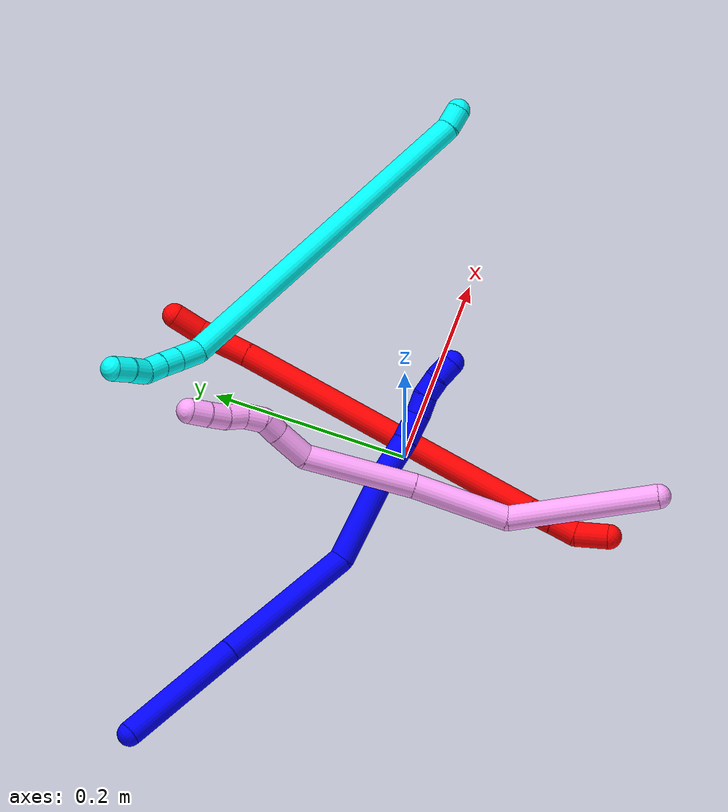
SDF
<sdf version="1.7">
 <world name="default">
  <plugin name="TubeGeneratorPlugin" filename="libtube_generator_plugin.so"/>
  <model name="photoneo_s_sensor">
   <static>1</static>
   <pose>0 0 2 1.57079 1.57079 3.14159</pose>
   <link name="link">
    <inertial><mass>0.1</mass></inertial>
    <sensor name="sensor" type="depth">
     <update_rate>30</update_rate>
     <camera>
      <horizontal_fov>1.22</horizontal_fov>
      <image><width>1920</width><height>1200</height><format>B8G8R8</format></image>
      <clip><near>0.1</near><far>4</far></clip>
      <depth_camera><output>points</output></depth_camera>
     </camera>
     <plugin name="camera_plugin" filename="libgazebo_ros_depth_camera.so">
      <baseline>0.2</baseline>
      <alwaysOn>1</alwaysOn>
      <updateRate>0.0</updateRate>
      <cameraName>camera_ir</cameraName>
      <imageTopicName>/camera/color/image_raw</imageTopicName>
      <cameraInfoTopicName>/camera/color/camera_info</cameraInfoTopicName>
      <depthImageTopicName>/camera/depth/image_raw</depthImageTopicName>
      <depthImageCameraInfoTopicName>/camera/depth/camera_info</depthImageCameraInfoTopicName>
      <pointCloudTopicName>/camera/depth/points</pointCloudTopicName>
      <frameName>fr_optical</frameName>
      <pointCloudCutoff>0.1</pointCloudCutoff>
      <pointCloudCutoffMax>2.0</pointCloudCutoffMax>
      <distortionK1>0</distortionK1>
      <distortionK2>0</distortionK2>
      <distortionK3>0</distortionK3>
      <distortionT1>0</distortionT1>
      <distortionT2>0</distortionT2>
      <CxPrime>0</CxPrime>
      <Cx>0</Cx>
      <Cy>0</Cy>
      <focalLength>0</focalLength>
      <hackBaseline>0</hackBaseline>
     </plugin>
    </sensor>
   </link>
  </model>
  <gravity>0 0 -9.8</gravity>
  <magnetic_field>6e-06 2.3e-05 -4.2e-05</magnetic_field>
  <atmosphere type="adiabatic"/>
  <physics name="default_physics" default="0" type="ode">
   <max_step_size>0.003</max_step_size>
   <real_time_factor>1</real_time_factor>
   <real_time_update_rate>1000</real_time_update_rate>
   <max_contacts>10000</max_contacts>
   <ode>
    <solver>
     <type>quick</type>
     <iters>100</iters>
     <sor>1.3</sor>
     <use_dynamic_moi_rescaling>0</use_dynamic_moi_rescaling>
    </solver>
    <constraints>
     <contact_max_correcting_vel>0</contact_max_correcting_vel>
     <contact_surface_layer>0.001</contact_surface_layer>
     <cfm>0</cfm>
     <erp>0.2</erp>
    </constraints>
   </ode>
  </physics>
  <scene><ambient>0.4 0.4 0.4 1</ambient><background>0.7 0.7 0.7 1</background><shadows>0</shadows></scene>
  <audio><device>default</device></audio>
  <spherical_coordinates>
   <surface_model>EARTH_WGS84</surface_model>
   <latitude_deg>0</latitude_deg>
   <longitude_deg>0</longitude_deg>
   <elevation>0</elevation>
   <heading_deg>0</heading_deg>
  </spherical_coordinates>
  <model name="bin">
   <static>1</static>
   <link name="bottom">
    <collision name="collision-bottom">
     <pose>0 0 -0.01 0 -0 0</pose>
     <geometry><box><size>0.8 0.6 0.02</size></box></geometry>
     <surface>
      <friction><ode><mu>100</mu><mu2>100</mu2></ode></friction>
      <contact><collide_bitmask>65535</collide_bitmask></contact>
     </surface>
    </collision>
   </link>
   <link name="west_wall">
    <collision name="collision-west_wall">
     <pose>-0.41 0 0.1 0 -0 0</pose>
     <geometry><box><size>0.02 0.6 0.2</size></box></geometry>
     <surface>
      <friction><ode><mu>100</mu><mu2>100</mu2></ode></friction>
      <contact><collide_bitmask>65535</collide_bitmask></contact>
     </surface>
    </collision>
   </link>
   <link name="east_wall">
    <collision name="collision-east_wall">
     <pose>0.41 0 0.1 0 -0 0</pose>
     <geometry><box><size>0.02 0.6 0.2</size></box></geometry>
     <surface>
      <friction><ode><mu>100</mu><mu2>100</mu2></ode></friction>
      <contact><collide_bitmask>65535</collide_bitmask></contact>
     </surface>
    </collision>
   </link>
   <link name="south_wall">
    <collision name="collision-south_wall">
     <pose>0 -0.31 0.1 0 -0 0</pose>
     <geometry><box><size>0.8 0.02 0.2</size></box></geometry>
     <surface>
      <friction><ode><mu>100</mu><mu2>100</mu2></ode></friction>
      <contact><collide_bitmask>65535</collide_bitmask></contact>
     </surface>
    </collision>
   </link>
   <link name="north_wall">
    <collision name="collision-north_wall">
     <pose>0 0.31 0.1 0 -0 0</pose>
     <geometry><box><size>0.8 0.02 0.2</size></box></geometry>
     <surface>
      <friction><ode><mu>100</mu><mu2>100</mu2></ode></friction>
      <contact><collide_bitmask>65535</collide_bitmask></contact>
     </surface>
    </collision>
   </link>
  </model>
  <model name="1">
   <static>0</static>
   <link name="1">
    <collision name="collision-cylinder-e_1_1_4">
     <pose>-0.001299 0.019034 -0.061353 -2.84076 -0.02022 0.133222</pose>
     <geometry><cylinder><radius>0.0125</radius><length>0.128501</length></cylinder></geometry>
     <surface>
      <friction><ode><mu>1.16</mu><mu2>1.16</mu2><slip1>0</slip1><slip2>0</slip2></ode></friction>
      <contact><ode><kp>1e+06</kp><kd>1</kd><max_vel>0</max_vel><min_depth>0.001</min_depth></ode></contact>
     </surface>
    </collision>
    <visual name="visual-cylinder-e_1_1_4">
     <pose>-0.001299 0.019034 -0.061353 -2.84076 -0.02022 0.133222</pose>
     <geometry><cylinder><radius>0.0125</radius><length>0.128501</length></cylinder></geometry>
     <material><ambient>0 0 1 1</ambient></material>
    </visual>
    <collision name="collision-cylinder-e_2_4_5">
     <pose>-0.004372 0.061377 -0.19203 -2.81725 -0.024243 0.147916</pose>
     <geometry><cylinder><radius>0.0125</radius><length>0.146319</length></cylinder></geometry>
     <surface>
      <friction><ode><mu>1.16</mu><mu2>1.16</mu2><slip1>0</slip1><slip2>0</slip2></ode></friction>
      <contact><ode><kp>1e+06</kp><kd>1</kd><max_vel>0</max_vel><min_depth>0.001</min_depth></ode></contact>
     </surface>
    </collision>
    <visual name="visual-cylinder-e_2_4_5">
     <pose>-0.004372 0.061377 -0.19203 -2.81725 -0.024243 0.147916</pose>
     <geometry><cylinder><radius>0.0125</radius><length>0.146319</length></cylinder></geometry>
     <material><ambient>0 0 1 1</ambient></material>
    </visual>
    <collision name="collision-cylinder-e_3_5_6">
     <pose>0.010668 0.086258 -0.305465 -3.10593 0.363956 -2.94836</pose>
     <geometry><cylinder><radius>0.0125</radius><length>0.094464</length></cylinder></geometry>
     <surface>
      <friction><ode><mu>1.16</mu><mu2>1.16</mu2><slip1>0</slip1><slip2>0</slip2></ode></friction>
      <contact><ode><kp>1e+06</kp><kd>1</kd><max_vel>0</max_vel><min_depth>0.001</min_depth></ode></contact>
     </surface>
    </collision>
    <visual name="visual-cylinder-e_3_5_6">
     <pose>0.010668 0.086258 -0.305465 -3.10593 0.363956 -2.94836</pose>
     <geometry><cylinder><radius>0.0125</radius><length>0.094464</length></cylinder></geometry>
     <material><ambient>0 0 1 1</ambient></material>
    </visual>
    <collision name="collision-cylinder-e_4_6_7">
     <pose>0.032825 0.090761 -0.368162 -2.98529 0.2767 -2.11694</pose>
     <geometry><cylinder><radius>0.0125</radius><length>0.039122</length></cylinder></geometry>
     <surface>
      <friction><ode><mu>1.16</mu><mu2>1.16</mu2><slip1>0</slip1><slip2>0</slip2></ode></friction>
      <contact><ode><kp>1e+06</kp><kd>1</kd><max_vel>0</max_vel><min_depth>0.001</min_depth></ode></contact>
     </surface>
    </collision>
    <visual name="visual-cylinder-e_4_6_7">
     <pose>0.032825 0.090761 -0.368162 -2.98529 0.2767 -2.11694</pose>
     <geometry><cylinder><radius>0.0125</radius><length>0.039122</length></cylinder></geometry>
     <material><ambient>0 0 1 1</ambient></material>
    </visual>
    <collision name="collision-cylinder-e_5_7_8">
     <pose>0.043334 0.095216 -0.400182 -3.02848 0.36494 -2.5462</pose>
     <geometry><cylinder><radius>0.0125</radius><length>0.028943</length></cylinder></geometry>
     <surface>
      <friction><ode><mu>1.16</mu><mu2>1.16</mu2><slip1>0</slip1><slip2>0</slip2></ode></friction>
      <contact><ode><kp>1e+06</kp><kd>1</kd><max_vel>0</max_vel><min_depth>0.001</min_depth></ode></contact>
     </surface>
    </collision>
    <visual name="visual-cylinder-e_5_7_8">
     <pose>0.043334 0.095216 -0.400182 -3.02848 0.36494 -2.5462</pose>
     <geometry><cylinder><radius>0.0125</radius><length>0.028943</length></cylinder></geometry>
     <material><ambient>0 0 1 1</ambient></material>
    </visual>
    <collision name="collision-cylinder-e_6_8_9">
     <pose>0.05319 0.095937 -0.422983 3.05586 0.462793 2.78147</pose>
     <geometry><cylinder><radius>0.0125</radius><length>0.021017</length></cylinder></geometry>
     <surface>
      <friction><ode><mu>1.16</mu><mu2>1.16</mu2><slip1>0</slip1><slip2>0</slip2></ode></friction>
      <contact><ode><kp>1e+06</kp><kd>1</kd><max_vel>0</max_vel><min_depth>0.001</min_depth></ode></contact>
     </surface>
    </collision>
    <visual name="visual-cylinder-e_6_8_9">
     <pose>0.05319 0.095937 -0.422983 3.05586 0.462793 2.78147</pose>
     <geometry><cylinder><radius>0.0125</radius><length>0.021017</length></cylinder></geometry>
     <material><ambient>0 0 1 1</ambient></material>
    </visual>
    <collision name="collision-cylinder-e_7_9_10">
     <pose>0.059889 0.093942 -0.442354 3.02322 0.196663 2.05974</pose>
     <geometry><cylinder><radius>0.0125</radius><length>0.020542</length></cylinder></geometry>
     <surface>
      <friction><ode><mu>1.16</mu><mu2>1.16</mu2><slip1>0</slip1><slip2>0</slip2></ode></friction>
      <contact><ode><kp>1e+06</kp><kd>1</kd><max_vel>0</max_vel><min_depth>0.001</min_depth></ode></contact>
     </surface>
    </collision>
    <visual name="visual-cylinder-e_7_9_10">
     <pose>0.059889 0.093942 -0.442354 3.02322 0.196663 2.05974</pose>
     <geometry><cylinder><radius>0.0125</radius><length>0.020542</length></cylinder></geometry>
     <material><ambient>0 0 1 1</ambient></material>
    </visual>
    <collision name="collision-cylinder-e_8_10_2">
     <pose>0.062753 0.093745 -0.462821 -3.04699 0.081335 -1.42011</pose>
     <geometry><cylinder><radius>0.0125</radius><length>0.021091</length></cylinder></geometry>
     <surface>
      <friction><ode><mu>1.16</mu><mu2>1.16</mu2><slip1>0</slip1><slip2>0</slip2></ode></friction>
      <contact><ode><kp>1e+06</kp><kd>1</kd><max_vel>0</max_vel><min_depth>0.001</min_depth></ode></contact>
     </surface>
    </collision>
    <visual name="visual-cylinder-e_8_10_2">
     <pose>0.062753 0.093745 -0.462821 -3.04699 0.081335 -1.42011</pose>
     <geometry><cylinder><radius>0.0125</radius><length>0.021091</length></cylinder></geometry>
     <material><ambient>0 0 1 1</ambient></material>
    </visual>
    <collision name="collision-sphere-2">
     <pose>0.063609 0.094738 -0.473284 0 -0 0</pose>
     <geometry><sphere><radius>0.0125</radius></sphere></geometry>
     <surface>
      <friction><ode><mu>1.16</mu><mu2>1.16</mu2><slip1>0</slip1><slip2>0</slip2></ode></friction>
      <contact><ode><kp>1e+06</kp><kd>1</kd><max_vel>0</max_vel><min_depth>0.001</min_depth></ode></contact>
     </surface>
    </collision>
    <visual name="visual-sphere-2">
     <pose>0.063609 0.094738 -0.473284 0 -0 0</pose>
     <geometry><sphere><radius>0.0125</radius></sphere></geometry>
     <material><ambient>0 0 1 1</ambient></material>
    </visual>
    <collision name="collision-sphere-10">
     <pose>0.061896 0.092753 -0.452357 0 -0 0</pose>
     <geometry><sphere><radius>0.0125</radius></sphere></geometry>
     <surface>
      <friction><ode><mu>1.16</mu><mu2>1.16</mu2><slip1>0</slip1><slip2>0</slip2></ode></friction>
      <contact><ode><kp>1e+06</kp><kd>1</kd><max_vel>0</max_vel><min_depth>0.001</min_depth></ode></contact>
     </surface>
    </collision>
    <visual name="visual-sphere-10">
     <pose>0.061896 0.092753 -0.452357 0 -0 0</pose>
     <geometry><sphere><radius>0.0125</radius></sphere></geometry>
     <material><ambient>0 0 1 1</ambient></material>
    </visual>
    <collision name="collision-sphere-9">
     <pose>0.057882 0.095132 -0.432352 0 -0 0</pose>
     <geometry><sphere><radius>0.0125</radius></sphere></geometry>
     <surface>
      <friction><ode><mu>1.16</mu><mu2>1.16</mu2><slip1>0</slip1><slip2>0</slip2></ode></friction>
      <contact><ode><kp>1e+06</kp><kd>1</kd><max_vel>0</max_vel><min_depth>0.001</min_depth></ode></contact>
     </surface>
    </collision>
    <visual name="visual-sphere-9">
     <pose>0.057882 0.095132 -0.432352 0 -0 0</pose>
     <geometry><sphere><radius>0.0125</radius></sphere></geometry>
     <material><ambient>0 0 1 1</ambient></material>
    </visual>
    <collision name="collision-sphere-4">
     <pose>-0.002598 0.038069 -0.122705 0 -0 0</pose>
     <geometry><sphere><radius>0.0125</radius></sphere></geometry>
     <surface>
      <friction><ode><mu>1.16</mu><mu2>1.16</mu2><slip1>0</slip1><slip2>0</slip2></ode></friction>
      <contact><ode><kp>1e+06</kp><kd>1</kd><max_vel>0</max_vel><min_depth>0.001</min_depth></ode></contact>
     </surface>
    </collision>
    <visual name="visual-sphere-4">
     <pose>-0.002598 0.038069 -0.122705 0 -0 0</pose>
     <geometry><sphere><radius>0.0125</radius></sphere></geometry>
     <material><ambient>0 0 1 1</ambient></material>
    </visual>
    <collision name="collision-sphere-1">
     <geometry><sphere><radius>0.0125</radius></sphere></geometry>
     <surface>
      <friction><ode><mu>1.16</mu><mu2>1.16</mu2><slip1>0</slip1><slip2>0</slip2></ode></friction>
      <contact><ode><kp>1e+06</kp><kd>1</kd><max_vel>0</max_vel><min_depth>0.001</min_depth></ode></contact>
     </surface>
    </collision>
    <visual name="visual-sphere-1">
     <geometry><sphere><radius>0.0125</radius></sphere></geometry>
     <material><ambient>0 0 1 1</ambient></material>
    </visual>
    <collision name="collision-sphere-8">
     <pose>0.048499 0.096742 -0.413614 0 -0 0</pose>
     <geometry><sphere><radius>0.0125</radius></sphere></geometry>
     <surface>
      <friction><ode><mu>1.16</mu><mu2>1.16</mu2><slip1>0</slip1><slip2>0</slip2></ode></friction>
      <contact><ode><kp>1e+06</kp><kd>1</kd><max_vel>0</max_vel><min_depth>0.001</min_depth></ode></contact>
     </surface>
    </collision>
    <visual name="visual-sphere-8">
     <pose>0.048499 0.096742 -0.413614 0 -0 0</pose>
     <geometry><sphere><radius>0.0125</radius></sphere></geometry>
     <material><ambient>0 0 1 1</ambient></material>
    </visual>
    <collision name="collision-sphere-5">
     <pose>-0.006145 0.084684 -0.261355 0 -0 0</pose>
     <geometry><sphere><radius>0.0125</radius></sphere></geometry>
     <surface>
      <friction><ode><mu>1.16</mu><mu2>1.16</mu2><slip1>0</slip1><slip2>0</slip2></ode></friction>
      <contact><ode><kp>1e+06</kp><kd>1</kd><max_vel>0</max_vel><min_depth>0.001</min_depth></ode></contact>
     </surface>
    </collision>
    <visual name="visual-sphere-5">
     <pose>-0.006145 0.084684 -0.261355 0 -0 0</pose>
     <geometry><sphere><radius>0.0125</radius></sphere></geometry>
     <material><ambient>0 0 1 1</ambient></material>
    </visual>
    <collision name="collision-sphere-6">
     <pose>0.027482 0.087832 -0.349575 0 -0 0</pose>
     <geometry><sphere><radius>0.0125</radius></sphere></geometry>
     <surface>
      <friction><ode><mu>1.16</mu><mu2>1.16</mu2><slip1>0</slip1><slip2>0</slip2></ode></friction>
      <contact><ode><kp>1e+06</kp><kd>1</kd><max_vel>0</max_vel><min_depth>0.001</min_depth></ode></contact>
     </surface>
    </collision>
    <visual name="visual-sphere-6">
     <pose>0.027482 0.087832 -0.349575 0 -0 0</pose>
     <geometry><sphere><radius>0.0125</radius></sphere></geometry>
     <material><ambient>0 0 1 1</ambient></material>
    </visual>
    <collision name="collision-sphere-7">
     <pose>0.038169 0.09369 -0.38675 0 -0 0</pose>
     <geometry><sphere><radius>0.0125</radius></sphere></geometry>
     <surface>
      <friction><ode><mu>1.16</mu><mu2>1.16</mu2><slip1>0</slip1><slip2>0</slip2></ode></friction>
      <contact><ode><kp>1e+06</kp><kd>1</kd><max_vel>0</max_vel><min_depth>0.001</min_depth></ode></contact>
     </surface>
    </collision>
    <visual name="visual-sphere-7">
     <pose>0.038169 0.09369 -0.38675 0 -0 0</pose>
     <geometry><sphere><radius>0.0125</radius></sphere></geometry>
     <material><ambient>0 0 1 1</ambient></material>
    </visual>
    <inertial>
     <pose>0.012823 0.063609 -0.237122 0 -0 0</pose>
     <mass>0.5</mass>
     <inertia>
      <ixx>0.000417</ixx>
      <ixy>0</ixy>
      <ixz>0</ixz>
      <iyy>-0.00029</iyy>
      <iyz>0</iyz>
      <izz>-0.0002</izz>
     </inertia>
    </inertial>
   </link>
   <pose>-0.371611 0.149212 0.019023 -1.86224 -0.178127 1.09779</pose>
  </model>
  <model name="2">
   <static>0</static>
   <link name="2">
    <collision name="collision-cylinder-e_1_1_4">
     <pose>0.003036 -0.014937 0.00307 1.3681 0.196494 0.16039</pose>
     <geometry><cylinder><radius>0.0125</radius><length>0.031097</length></cylinder></geometry>
     <surface>
      <friction><ode><mu>1.16</mu><mu2>1.16</mu2><slip1>0</slip1><slip2>0</slip2></ode></friction>
      <contact><ode><kp>1e+06</kp><kd>1</kd><max_vel>0</max_vel><min_depth>0.001</min_depth></ode></contact>
     </surface>
    </collision>
    <visual name="visual-cylinder-e_1_1_4">
     <pose>0.003036 -0.014937 0.00307 1.3681 0.196494 0.16039</pose>
     <geometry><cylinder><radius>0.0125</radius><length>0.031097</length></cylinder></geometry>
     <material><ambient>1 0 0 1</ambient></material>
    </visual>
    <collision name="collision-cylinder-e_2_4_5">
     <pose>0.002536 -0.054146 0.018035 1.11511 -0.130039 -0.081156</pose>
     <geometry><cylinder><radius>0.0125</radius><length>0.054521</length></cylinder></geometry>
     <surface>
      <friction><ode><mu>1.16</mu><mu2>1.16</mu2><slip1>0</slip1><slip2>0</slip2></ode></friction>
      <contact><ode><kp>1e+06</kp><kd>1</kd><max_vel>0</max_vel><min_depth>0.001</min_depth></ode></contact>
     </surface>
    </collision>
    <visual name="visual-cylinder-e_2_4_5">
     <pose>0.002536 -0.054146 0.018035 1.11511 -0.130039 -0.081156</pose>
     <geometry><cylinder><radius>0.0125</radius><length>0.054521</length></cylinder></geometry>
     <material><ambient>1 0 0 1</ambient></material>
    </visual>
    <collision name="collision-cylinder-e_3_5_6">
     <pose>-0.032304 -0.225134 0.097542 1.13897 -0.191416 -0.122774</pose>
     <geometry><cylinder><radius>0.0125</radius><length>0.329101</length></cylinder></geometry>
     <surface>
      <friction><ode><mu>1.16</mu><mu2>1.16</mu2><slip1>0</slip1><slip2>0</slip2></ode></friction>
      <contact><ode><kp>1e+06</kp><kd>1</kd><max_vel>0</max_vel><min_depth>0.001</min_depth></ode></contact>
     </surface>
    </collision>
    <visual name="visual-cylinder-e_3_5_6">
     <pose>-0.032304 -0.225134 0.097542 1.13897 -0.191416 -0.122774</pose>
     <geometry><cylinder><radius>0.0125</radius><length>0.329101</length></cylinder></geometry>
     <material><ambient>1 0 0 1</ambient></material>
    </visual>
    <collision name="collision-cylinder-e_4_6_7">
     <pose>-0.065712 -0.383445 0.170826 1.11578 -0.161384 -0.10084</pose>
     <geometry><cylinder><radius>0.0125</radius><length>0.026159</length></cylinder></geometry>
     <surface>
      <friction><ode><mu>1.16</mu><mu2>1.16</mu2><slip1>0</slip1><slip2>0</slip2></ode></friction>
      <contact><ode><kp>1e+06</kp><kd>1</kd><max_vel>0</max_vel><min_depth>0.001</min_depth></ode></contact>
     </surface>
    </collision>
    <visual name="visual-cylinder-e_4_6_7">
     <pose>-0.065712 -0.383445 0.170826 1.11578 -0.161384 -0.10084</pose>
     <geometry><cylinder><radius>0.0125</radius><length>0.026159</length></cylinder></geometry>
     <material><ambient>1 0 0 1</ambient></material>
    </visual>
    <collision name="collision-cylinder-e_5_7_8">
     <pose>-0.069099 -0.40672 0.181564 1.16165 -0.100671 -0.066107</pose>
     <geometry><cylinder><radius>0.0125</radius><length>0.025588</length></cylinder></geometry>
     <surface>
      <friction><ode><mu>1.16</mu><mu2>1.16</mu2><slip1>0</slip1><slip2>0</slip2></ode></friction>
      <contact><ode><kp>1e+06</kp><kd>1</kd><max_vel>0</max_vel><min_depth>0.001</min_depth></ode></contact>
     </surface>
    </collision>
    <visual name="visual-cylinder-e_5_7_8">
     <pose>-0.069099 -0.40672 0.181564 1.16165 -0.100671 -0.066107</pose>
     <geometry><cylinder><radius>0.0125</radius><length>0.025588</length></cylinder></geometry>
     <material><ambient>1 0 0 1</ambient></material>
    </visual>
    <collision name="collision-cylinder-e_6_8_2">
     <pose>-0.070937 -0.429816 0.198895 0.749523 -0.0329 -0.012942</pose>
     <geometry><cylinder><radius>0.0125</radius><length>0.033535</length></cylinder></geometry>
     <surface>
      <friction><ode><mu>1.16</mu><mu2>1.16</mu2><slip1>0</slip1><slip2>0</slip2></ode></friction>
      <contact><ode><kp>1e+06</kp><kd>1</kd><max_vel>0</max_vel><min_depth>0.001</min_depth></ode></contact>
     </surface>
    </collision>
    <visual name="visual-cylinder-e_6_8_2">
     <pose>-0.070937 -0.429816 0.198895 0.749523 -0.0329 -0.012942</pose>
     <geometry><cylinder><radius>0.0125</radius><length>0.033535</length></cylinder></geometry>
     <material><ambient>1 0 0 1</ambient></material>
    </visual>
    <collision name="collision-sphere-2">
     <pose>-0.071488 -0.441233 0.211163 0 -0 0</pose>
     <geometry><sphere><radius>0.0125</radius></sphere></geometry>
     <surface>
      <friction><ode><mu>1.16</mu><mu2>1.16</mu2><slip1>0</slip1><slip2>0</slip2></ode></friction>
      <contact><ode><kp>1e+06</kp><kd>1</kd><max_vel>0</max_vel><min_depth>0.001</min_depth></ode></contact>
     </surface>
    </collision>
    <visual name="visual-sphere-2">
     <pose>-0.071488 -0.441233 0.211163 0 -0 0</pose>
     <geometry><sphere><radius>0.0125</radius></sphere></geometry>
     <material><ambient>1 0 0 1</ambient></material>
    </visual>
    <collision name="collision-sphere-4">
     <pose>0.006071 -0.029874 0.00614 0 -0 0</pose>
     <geometry><sphere><radius>0.0125</radius></sphere></geometry>
     <surface>
      <friction><ode><mu>1.16</mu><mu2>1.16</mu2><slip1>0</slip1><slip2>0</slip2></ode></friction>
      <contact><ode><kp>1e+06</kp><kd>1</kd><max_vel>0</max_vel><min_depth>0.001</min_depth></ode></contact>
     </surface>
    </collision>
    <visual name="visual-sphere-4">
     <pose>0.006071 -0.029874 0.00614 0 -0 0</pose>
     <geometry><sphere><radius>0.0125</radius></sphere></geometry>
     <material><ambient>1 0 0 1</ambient></material>
    </visual>
    <collision name="collision-sphere-1">
     <geometry><sphere><radius>0.0125</radius></sphere></geometry>
     <surface>
      <friction><ode><mu>1.16</mu><mu2>1.16</mu2><slip1>0</slip1><slip2>0</slip2></ode></friction>
      <contact><ode><kp>1e+06</kp><kd>1</kd><max_vel>0</max_vel><min_depth>0.001</min_depth></ode></contact>
     </surface>
    </collision>
    <visual name="visual-sphere-1">
     <geometry><sphere><radius>0.0125</radius></sphere></geometry>
     <material><ambient>1 0 0 1</ambient></material>
    </visual>
    <collision name="collision-sphere-8">
     <pose>-0.070385 -0.418399 0.186628 0 -0 0</pose>
     <geometry><sphere><radius>0.0125</radius></sphere></geometry>
     <surface>
      <friction><ode><mu>1.16</mu><mu2>1.16</mu2><slip1>0</slip1><slip2>0</slip2></ode></friction>
      <contact><ode><kp>1e+06</kp><kd>1</kd><max_vel>0</max_vel><min_depth>0.001</min_depth></ode></contact>
     </surface>
    </collision>
    <visual name="visual-sphere-8">
     <pose>-0.070385 -0.418399 0.186628 0 -0 0</pose>
     <geometry><sphere><radius>0.0125</radius></sphere></geometry>
     <material><ambient>1 0 0 1</ambient></material>
    </visual>
    <collision name="collision-sphere-5">
     <pose>-0.000999 -0.078418 0.029931 0 -0 0</pose>
     <geometry><sphere><radius>0.0125</radius></sphere></geometry>
     <surface>
      <friction><ode><mu>1.16</mu><mu2>1.16</mu2><slip1>0</slip1><slip2>0</slip2></ode></friction>
      <contact><ode><kp>1e+06</kp><kd>1</kd><max_vel>0</max_vel><min_depth>0.001</min_depth></ode></contact>
     </surface>
    </collision>
    <visual name="visual-sphere-5">
     <pose>-0.000999 -0.078418 0.029931 0 -0 0</pose>
     <geometry><sphere><radius>0.0125</radius></sphere></geometry>
     <material><ambient>1 0 0 1</ambient></material>
    </visual>
    <collision name="collision-sphere-6">
     <pose>-0.06361 -0.371849 0.165153 0 -0 0</pose>
     <geometry><sphere><radius>0.0125</radius></sphere></geometry>
     <surface>
      <friction><ode><mu>1.16</mu><mu2>1.16</mu2><slip1>0</slip1><slip2>0</slip2></ode></friction>
      <contact><ode><kp>1e+06</kp><kd>1</kd><max_vel>0</max_vel><min_depth>0.001</min_depth></ode></contact>
     </surface>
    </collision>
    <visual name="visual-sphere-6">
     <pose>-0.06361 -0.371849 0.165153 0 -0 0</pose>
     <geometry><sphere><radius>0.0125</radius></sphere></geometry>
     <material><ambient>1 0 0 1</ambient></material>
    </visual>
    <collision name="collision-sphere-7">
     <pose>-0.067813 -0.395041 0.1765 0 -0 0</pose>
     <geometry><sphere><radius>0.0125</radius></sphere></geometry>
     <surface>
      <friction><ode><mu>1.16</mu><mu2>1.16</mu2><slip1>0</slip1><slip2>0</slip2></ode></friction>
      <contact><ode><kp>1e+06</kp><kd>1</kd><max_vel>0</max_vel><min_depth>0.001</min_depth></ode></contact>
     </surface>
    </collision>
    <visual name="visual-sphere-7">
     <pose>-0.067813 -0.395041 0.1765 0 -0 0</pose>
     <geometry><sphere><radius>0.0125</radius></sphere></geometry>
     <material><ambient>1 0 0 1</ambient></material>
    </visual>
    <inertial>
     <pose>-0.032529 -0.224719 0.097929 0 -0 0</pose>
     <mass>0.5</mass>
     <inertia>
      <ixx>0.00257</ixx>
      <ixy>0</ixy>
      <ixz>0</ixz>
      <iyy>0.000921</iyy>
      <iyz>0</iyz>
      <izz>0.003271</izz>
     </inertia>
    </inertial>
   </link>
   <pose>0.058559 0.266142 0.025642 0.616773 0.782638 0.063459</pose>
  </model>
  <model name="3">
   <static>0</static>
   <link name="3">
    <collision name="collision-cylinder-e_1_1_4">
     <pose>-0.009714 0.0061 -0.000763 -1.6952 -1.00659 1.11537</pose>
     <geometry><cylinder><radius>0.0125</radius><length>0.022992</length></cylinder></geometry>
     <surface>
      <friction><ode><mu>1.16</mu><mu2>1.16</mu2><slip1>0</slip1><slip2>0</slip2></ode></friction>
      <contact><ode><kp>1e+06</kp><kd>1</kd><max_vel>0</max_vel><min_depth>0.001</min_depth></ode></contact>
     </surface>
    </collision>
    <visual name="visual-cylinder-e_1_1_4">
     <pose>-0.009714 0.0061 -0.000763 -1.6952 -1.00659 1.11537</pose>
     <geometry><cylinder><radius>0.0125</radius><length>0.022992</length></cylinder></geometry>
     <material><ambient>0.003922 1 0.996078 1</ambient></material>
    </visual>
    <collision name="collision-cylinder-e_2_4_5">
     <pose>-0.184032 0.076087 -0.052342 -2.24274 -1.11041 1.8197</pose>
     <geometry><cylinder><radius>0.0125</radius><length>0.367468</length></cylinder></geometry>
     <surface>
      <friction><ode><mu>1.16</mu><mu2>1.16</mu2><slip1>0</slip1><slip2>0</slip2></ode></friction>
      <contact><ode><kp>1e+06</kp><kd>1</kd><max_vel>0</max_vel><min_depth>0.001</min_depth></ode></contact>
     </surface>
    </collision>
    <visual name="visual-cylinder-e_2_4_5">
     <pose>-0.184032 0.076087 -0.052342 -2.24274 -1.11041 1.8197</pose>
     <geometry><cylinder><radius>0.0125</radius><length>0.367468</length></cylinder></geometry>
     <material><ambient>0.003922 1 0.996078 1</ambient></material>
    </visual>
    <collision name="collision-cylinder-e_3_5_6">
     <pose>-0.358806 0.142912 -0.111234 -2.79271 -0.869272 2.41599</pose>
     <geometry><cylinder><radius>0.0125</radius><length>0.026629</length></cylinder></geometry>
     <surface>
      <friction><ode><mu>1.16</mu><mu2>1.16</mu2><slip1>0</slip1><slip2>0</slip2></ode></friction>
      <contact><ode><kp>1e+06</kp><kd>1</kd><max_vel>0</max_vel><min_depth>0.001</min_depth></ode></contact>
     </surface>
    </collision>
    <visual name="visual-cylinder-e_3_5_6">
     <pose>-0.358806 0.142912 -0.111234 -2.79271 -0.869272 2.41599</pose>
     <geometry><cylinder><radius>0.0125</radius><length>0.026629</length></cylinder></geometry>
     <material><ambient>0.003922 1 0.996078 1</ambient></material>
    </visual>
    <collision name="collision-cylinder-e_4_6_7">
     <pose>-0.376579 0.148354 -0.126026 -2.78452 -0.814849 2.34951</pose>
     <geometry><cylinder><radius>0.0125</radius><length>0.020899</length></cylinder></geometry>
     <surface>
      <friction><ode><mu>1.16</mu><mu2>1.16</mu2><slip1>0</slip1><slip2>0</slip2></ode></friction>
      <contact><ode><kp>1e+06</kp><kd>1</kd><max_vel>0</max_vel><min_depth>0.001</min_depth></ode></contact>
     </surface>
    </collision>
    <visual name="visual-cylinder-e_4_6_7">
     <pose>-0.376579 0.148354 -0.126026 -2.78452 -0.814849 2.34951</pose>
     <geometry><cylinder><radius>0.0125</radius><length>0.020899</length></cylinder></geometry>
     <material><ambient>0.003922 1 0.996078 1</ambient></material>
    </visual>
    <collision name="collision-cylinder-e_5_7_8">
     <pose>-0.391718 0.153807 -0.139325 -2.72072 -0.807273 2.21409</pose>
     <geometry><cylinder><radius>0.0125</radius><length>0.020861</length></cylinder></geometry>
     <surface>
      <friction><ode><mu>1.16</mu><mu2>1.16</mu2><slip1>0</slip1><slip2>0</slip2></ode></friction>
      <contact><ode><kp>1e+06</kp><kd>1</kd><max_vel>0</max_vel><min_depth>0.001</min_depth></ode></contact>
     </surface>
    </collision>
    <visual name="visual-cylinder-e_5_7_8">
     <pose>-0.391718 0.153807 -0.139325 -2.72072 -0.807273 2.21409</pose>
     <geometry><cylinder><radius>0.0125</radius><length>0.020861</length></cylinder></geometry>
     <material><ambient>0.003922 1 0.996078 1</ambient></material>
    </visual>
    <collision name="collision-cylinder-e_6_8_9">
     <pose>-0.403723 0.157685 -0.154933 -3.03871 -0.457804 2.70659</pose>
     <geometry><cylinder><radius>0.0125</radius><length>0.020229</length></cylinder></geometry>
     <surface>
      <friction><ode><mu>1.16</mu><mu2>1.16</mu2><slip1>0</slip1><slip2>0</slip2></ode></friction>
      <contact><ode><kp>1e+06</kp><kd>1</kd><max_vel>0</max_vel><min_depth>0.001</min_depth></ode></contact>
     </surface>
    </collision>
    <visual name="visual-cylinder-e_6_8_9">
     <pose>-0.403723 0.157685 -0.154933 -3.03871 -0.457804 2.70659</pose>
     <geometry><cylinder><radius>0.0125</radius><length>0.020229</length></cylinder></geometry>
     <material><ambient>0.003922 1 0.996078 1</ambient></material>
    </visual>
    <collision name="collision-cylinder-e_7_9_2">
     <pose>-0.413845 0.158891 -0.172757 -3.11046 -0.570726 3.03556</pose>
     <geometry><cylinder><radius>0.0125</radius><length>0.020922</length></cylinder></geometry>
     <surface>
      <friction><ode><mu>1.16</mu><mu2>1.16</mu2><slip1>0</slip1><slip2>0</slip2></ode></friction>
      <contact><ode><kp>1e+06</kp><kd>1</kd><max_vel>0</max_vel><min_depth>0.001</min_depth></ode></contact>
     </surface>
    </collision>
    <visual name="visual-cylinder-e_7_9_2">
     <pose>-0.413845 0.158891 -0.172757 -3.11046 -0.570726 3.03556</pose>
     <geometry><cylinder><radius>0.0125</radius><length>0.020922</length></cylinder></geometry>
     <material><ambient>0.003922 1 0.996078 1</ambient></material>
    </visual>
    <collision name="collision-sphere-2">
     <pose>-0.419496 0.159165 -0.181555 0 -0 0</pose>
     <geometry><sphere><radius>0.0125</radius></sphere></geometry>
     <surface>
      <friction><ode><mu>1.16</mu><mu2>1.16</mu2><slip1>0</slip1><slip2>0</slip2></ode></friction>
      <contact><ode><kp>1e+06</kp><kd>1</kd><max_vel>0</max_vel><min_depth>0.001</min_depth></ode></contact>
     </surface>
    </collision>
    <visual name="visual-sphere-2">
     <pose>-0.419496 0.159165 -0.181555 0 -0 0</pose>
     <geometry><sphere><radius>0.0125</radius></sphere></geometry>
     <material><ambient>0.003922 1 0.996078 1</ambient></material>
    </visual>
    <collision name="collision-sphere-9">
     <pose>-0.408194 0.158617 -0.163958 0 -0 0</pose>
     <geometry><sphere><radius>0.0125</radius></sphere></geometry>
     <surface>
      <friction><ode><mu>1.16</mu><mu2>1.16</mu2><slip1>0</slip1><slip2>0</slip2></ode></friction>
      <contact><ode><kp>1e+06</kp><kd>1</kd><max_vel>0</max_vel><min_depth>0.001</min_depth></ode></contact>
     </surface>
    </collision>
    <visual name="visual-sphere-9">
     <pose>-0.408194 0.158617 -0.163958 0 -0 0</pose>
     <geometry><sphere><radius>0.0125</radius></sphere></geometry>
     <material><ambient>0.003922 1 0.996078 1</ambient></material>
    </visual>
    <collision name="collision-sphere-4">
     <pose>-0.019428 0.0122 -0.001526 0 -0 0</pose>
     <geometry><sphere><radius>0.0125</radius></sphere></geometry>
     <surface>
      <friction><ode><mu>1.16</mu><mu2>1.16</mu2><slip1>0</slip1><slip2>0</slip2></ode></friction>
      <contact><ode><kp>1e+06</kp><kd>1</kd><max_vel>0</max_vel><min_depth>0.001</min_depth></ode></contact>
     </surface>
    </collision>
    <visual name="visual-sphere-4">
     <pose>-0.019428 0.0122 -0.001526 0 -0 0</pose>
     <geometry><sphere><radius>0.0125</radius></sphere></geometry>
     <material><ambient>0.003922 1 0.996078 1</ambient></material>
    </visual>
    <collision name="collision-sphere-1">
     <geometry><sphere><radius>0.0125</radius></sphere></geometry>
     <surface>
      <friction><ode><mu>1.16</mu><mu2>1.16</mu2><slip1>0</slip1><slip2>0</slip2></ode></friction>
      <contact><ode><kp>1e+06</kp><kd>1</kd><max_vel>0</max_vel><min_depth>0.001</min_depth></ode></contact>
     </surface>
    </collision>
    <visual name="visual-sphere-1">
     <geometry><sphere><radius>0.0125</radius></sphere></geometry>
     <material><ambient>0.003922 1 0.996078 1</ambient></material>
    </visual>
    <collision name="collision-sphere-8">
     <pose>-0.399253 0.156753 -0.145908 0 -0 0</pose>
     <geometry><sphere><radius>0.0125</radius></sphere></geometry>
     <surface>
      <friction><ode><mu>1.16</mu><mu2>1.16</mu2><slip1>0</slip1><slip2>0</slip2></ode></friction>
      <contact><ode><kp>1e+06</kp><kd>1</kd><max_vel>0</max_vel><min_depth>0.001</min_depth></ode></contact>
     </surface>
    </collision>
    <visual name="visual-sphere-8">
     <pose>-0.399253 0.156753 -0.145908 0 -0 0</pose>
     <geometry><sphere><radius>0.0125</radius></sphere></geometry>
     <material><ambient>0.003922 1 0.996078 1</ambient></material>
    </visual>
    <collision name="collision-sphere-5">
     <pose>-0.348635 0.139974 -0.103159 0 -0 0</pose>
     <geometry><sphere><radius>0.0125</radius></sphere></geometry>
     <surface>
      <friction><ode><mu>1.16</mu><mu2>1.16</mu2><slip1>0</slip1><slip2>0</slip2></ode></friction>
      <contact><ode><kp>1e+06</kp><kd>1</kd><max_vel>0</max_vel><min_depth>0.001</min_depth></ode></contact>
     </surface>
    </collision>
    <visual name="visual-sphere-5">
     <pose>-0.348635 0.139974 -0.103159 0 -0 0</pose>
     <geometry><sphere><radius>0.0125</radius></sphere></geometry>
     <material><ambient>0.003922 1 0.996078 1</ambient></material>
    </visual>
    <collision name="collision-sphere-6">
     <pose>-0.368976 0.145849 -0.11931 0 -0 0</pose>
     <geometry><sphere><radius>0.0125</radius></sphere></geometry>
     <surface>
      <friction><ode><mu>1.16</mu><mu2>1.16</mu2><slip1>0</slip1><slip2>0</slip2></ode></friction>
      <contact><ode><kp>1e+06</kp><kd>1</kd><max_vel>0</max_vel><min_depth>0.001</min_depth></ode></contact>
     </surface>
    </collision>
    <visual name="visual-sphere-6">
     <pose>-0.368976 0.145849 -0.11931 0 -0 0</pose>
     <geometry><sphere><radius>0.0125</radius></sphere></geometry>
     <material><ambient>0.003922 1 0.996078 1</ambient></material>
    </visual>
    <collision name="collision-sphere-7">
     <pose>-0.384182 0.15086 -0.132742 0 -0 0</pose>
     <geometry><sphere><radius>0.0125</radius></sphere></geometry>
     <surface>
      <friction><ode><mu>1.16</mu><mu2>1.16</mu2><slip1>0</slip1><slip2>0</slip2></ode></friction>
      <contact><ode><kp>1e+06</kp><kd>1</kd><max_vel>0</max_vel><min_depth>0.001</min_depth></ode></contact>
     </surface>
    </collision>
    <visual name="visual-sphere-7">
     <pose>-0.384182 0.15086 -0.132742 0 -0 0</pose>
     <geometry><sphere><radius>0.0125</radius></sphere></geometry>
     <material><ambient>0.003922 1 0.996078 1</ambient></material>
    </visual>
    <inertial>
     <pose>-0.220542 0.089457 -0.069005 0 -0 0</pose>
     <mass>0.5</mass>
     <inertia>
      <ixx>0.001299</ixx>
      <ixy>0</ixy>
      <ixz>0</ixz>
      <iyy>0.005269</iyy>
      <iyz>0</iyz>
      <izz>0.002265</izz>
     </inertia>
    </inertial>
   </link>
   <pose>0.382255 0.076079 0.01266 2.83041 -0.315693 -0.663555</pose>
  </model>
  <model name="4">
   <static>0</static>
   <link name="4">
    <collision name="collision-cylinder-e_1_1_4">
     <pose>-0.027618 0.06552 0.024407 -1.21421 -0.376196 0.262913</pose>
     <geometry><cylinder><radius>0.0125</radius><length>0.150351</length></cylinder></geometry>
     <surface>
      <friction><ode><mu>1.16</mu><mu2>1.16</mu2><slip1>0</slip1><slip2>0</slip2></ode></friction>
      <contact><ode><kp>1e+06</kp><kd>1</kd><max_vel>0</max_vel><min_depth>0.001</min_depth></ode></contact>
     </surface>
    </collision>
    <visual name="visual-cylinder-e_1_1_4">
     <pose>-0.027618 0.06552 0.024407 -1.21421 -0.376196 0.262913</pose>
     <geometry><cylinder><radius>0.0125</radius><length>0.150351</length></cylinder></geometry>
     <material><ambient>1 0.65098 0.996078 1</ambient></material>
    </visual>
    <collision name="collision-cylinder-e_2_4_5">
     <pose>-0.049296 0.176293 0.065963 -1.20855 0.122153 -0.084393</pose>
     <geometry><cylinder><radius>0.0125</radius><length>0.097514</length></cylinder></geometry>
     <surface>
      <friction><ode><mu>1.16</mu><mu2>1.16</mu2><slip1>0</slip1><slip2>0</slip2></ode></friction>
      <contact><ode><kp>1e+06</kp><kd>1</kd><max_vel>0</max_vel><min_depth>0.001</min_depth></ode></contact>
     </surface>
    </collision>
    <visual name="visual-cylinder-e_2_4_5">
     <pose>-0.049296 0.176293 0.065963 -1.20855 0.122153 -0.084393</pose>
     <geometry><cylinder><radius>0.0125</radius><length>0.097514</length></cylinder></geometry>
     <material><ambient>1 0.65098 0.996078 1</ambient></material>
    </visual>
    <collision name="collision-cylinder-e_3_5_6">
     <pose>-0.039499 0.271851 0.10773 -1.1157 0.068734 -0.042898</pose>
     <geometry><cylinder><radius>0.0125</radius><length>0.112277</length></cylinder></geometry>
     <surface>
      <friction><ode><mu>1.16</mu><mu2>1.16</mu2><slip1>0</slip1><slip2>0</slip2></ode></friction>
      <contact><ode><kp>1e+06</kp><kd>1</kd><max_vel>0</max_vel><min_depth>0.001</min_depth></ode></contact>
     </surface>
    </collision>
    <visual name="visual-cylinder-e_3_5_6">
     <pose>-0.039499 0.271851 0.10773 -1.1157 0.068734 -0.042898</pose>
     <geometry><cylinder><radius>0.0125</radius><length>0.112277</length></cylinder></geometry>
     <material><ambient>1 0.65098 0.996078 1</ambient></material>
    </visual>
    <collision name="collision-cylinder-e_4_6_7">
     <pose>-0.025894 0.335532 0.141577 -0.966756 0.540397 -0.288748</pose>
     <geometry><cylinder><radius>0.0125</radius><length>0.037902</length></cylinder></geometry>
     <surface>
      <friction><ode><mu>1.16</mu><mu2>1.16</mu2><slip1>0</slip1><slip2>0</slip2></ode></friction>
      <contact><ode><kp>1e+06</kp><kd>1</kd><max_vel>0</max_vel><min_depth>0.001</min_depth></ode></contact>
     </surface>
    </collision>
    <visual name="visual-cylinder-e_4_6_7">
     <pose>-0.025894 0.335532 0.141577 -0.966756 0.540397 -0.288748</pose>
     <geometry><cylinder><radius>0.0125</radius><length>0.037902</length></cylinder></geometry>
     <material><ambient>1 0.65098 0.996078 1</ambient></material>
    </visual>
    <collision name="collision-cylinder-e_5_7_8">
     <pose>-0.010545 0.355015 0.156638 -0.808595 0.585399 -0.256465</pose>
     <geometry><cylinder><radius>0.0125</radius><length>0.020265</length></cylinder></geometry>
     <surface>
      <friction><ode><mu>1.16</mu><mu2>1.16</mu2><slip1>0</slip1><slip2>0</slip2></ode></friction>
      <contact><ode><kp>1e+06</kp><kd>1</kd><max_vel>0</max_vel><min_depth>0.001</min_depth></ode></contact>
     </surface>
    </collision>
    <visual name="visual-cylinder-e_5_7_8">
     <pose>-0.010545 0.355015 0.156638 -0.808595 0.585399 -0.256465</pose>
     <geometry><cylinder><radius>0.0125</radius><length>0.020265</length></cylinder></geometry>
     <material><ambient>1 0.65098 0.996078 1</ambient></material>
    </visual>
    <collision name="collision-cylinder-e_6_8_9">
     <pose>-0.004104 0.369279 0.169234 -0.87838 0.079382 -0.037308</pose>
     <geometry><cylinder><radius>0.0125</radius><length>0.021257</length></cylinder></geometry>
     <surface>
      <friction><ode><mu>1.16</mu><mu2>1.16</mu2><slip1>0</slip1><slip2>0</slip2></ode></friction>
      <contact><ode><kp>1e+06</kp><kd>1</kd><max_vel>0</max_vel><min_depth>0.001</min_depth></ode></contact>
     </surface>
    </collision>
    <visual name="visual-cylinder-e_6_8_9">
     <pose>-0.004104 0.369279 0.169234 -0.87838 0.079382 -0.037308</pose>
     <geometry><cylinder><radius>0.0125</radius><length>0.021257</length></cylinder></geometry>
     <material><ambient>1 0.65098 0.996078 1</ambient></material>
    </visual>
    <collision name="collision-cylinder-e_7_9_10">
     <pose>-0.004564 0.383504 0.183969 -0.650803 -0.129304 0.04368</pose>
     <geometry><cylinder><radius>0.0125</radius><length>0.020207</length></cylinder></geometry>
     <surface>
      <friction><ode><mu>1.16</mu><mu2>1.16</mu2><slip1>0</slip1><slip2>0</slip2></ode></friction>
      <contact><ode><kp>1e+06</kp><kd>1</kd><max_vel>0</max_vel><min_depth>0.001</min_depth></ode></contact>
     </surface>
    </collision>
    <visual name="visual-cylinder-e_7_9_10">
     <pose>-0.004564 0.383504 0.183969 -0.650803 -0.129304 0.04368</pose>
     <geometry><cylinder><radius>0.0125</radius><length>0.020207</length></cylinder></geometry>
     <material><ambient>1 0.65098 0.996078 1</ambient></material>
    </visual>
    <collision name="collision-cylinder-e_8_10_11">
     <pose>-0.00516 0.395994 0.199581 -0.698818 0.070747 -0.025787</pose>
     <geometry><cylinder><radius>0.0125</radius><length>0.02001</length></cylinder></geometry>
     <surface>
      <friction><ode><mu>1.16</mu><mu2>1.16</mu2><slip1>0</slip1><slip2>0</slip2></ode></friction>
      <contact><ode><kp>1e+06</kp><kd>1</kd><max_vel>0</max_vel><min_depth>0.001</min_depth></ode></contact>
     </surface>
    </collision>
    <visual name="visual-cylinder-e_8_10_11">
     <pose>-0.00516 0.395994 0.199581 -0.698818 0.070747 -0.025787</pose>
     <geometry><cylinder><radius>0.0125</radius><length>0.02001</length></cylinder></geometry>
     <material><ambient>1 0.65098 0.996078 1</ambient></material>
    </visual>
    <collision name="collision-cylinder-e_9_11_2">
     <pose>-0.003708 0.409694 0.214196 -0.806821 0.073691 -0.031464</pose>
     <geometry><cylinder><radius>0.0125</radius><length>0.020219</length></cylinder></geometry>
     <surface>
      <friction><ode><mu>1.16</mu><mu2>1.16</mu2><slip1>0</slip1><slip2>0</slip2></ode></friction>
      <contact><ode><kp>1e+06</kp><kd>1</kd><max_vel>0</max_vel><min_depth>0.001</min_depth></ode></contact>
     </surface>
    </collision>
    <visual name="visual-cylinder-e_9_11_2">
     <pose>-0.003708 0.409694 0.214196 -0.806821 0.073691 -0.031464</pose>
     <geometry><cylinder><radius>0.0125</radius><length>0.020219</length></cylinder></geometry>
     <material><ambient>1 0.65098 0.996078 1</ambient></material>
    </visual>
    <collision name="collision-sphere-2">
     <pose>-0.002964 0.416974 0.221171 0 -0 0</pose>
     <geometry><sphere><radius>0.0125</radius></sphere></geometry>
     <surface>
      <friction><ode><mu>1.16</mu><mu2>1.16</mu2><slip1>0</slip1><slip2>0</slip2></ode></friction>
      <contact><ode><kp>1e+06</kp><kd>1</kd><max_vel>0</max_vel><min_depth>0.001</min_depth></ode></contact>
     </surface>
    </collision>
    <visual name="visual-sphere-2">
     <pose>-0.002964 0.416974 0.221171 0 -0 0</pose>
     <geometry><sphere><radius>0.0125</radius></sphere></geometry>
     <material><ambient>1 0.65098 0.996078 1</ambient></material>
    </visual>
    <collision name="collision-sphere-11">
     <pose>-0.004452 0.402414 0.207221 0 -0 0</pose>
     <geometry><sphere><radius>0.0125</radius></sphere></geometry>
     <surface>
      <friction><ode><mu>1.16</mu><mu2>1.16</mu2><slip1>0</slip1><slip2>0</slip2></ode></friction>
      <contact><ode><kp>1e+06</kp><kd>1</kd><max_vel>0</max_vel><min_depth>0.001</min_depth></ode></contact>
     </surface>
    </collision>
    <visual name="visual-sphere-11">
     <pose>-0.004452 0.402414 0.207221 0 -0 0</pose>
     <geometry><sphere><radius>0.0125</radius></sphere></geometry>
     <material><ambient>1 0.65098 0.996078 1</ambient></material>
    </visual>
    <collision name="collision-sphere-10">
     <pose>-0.005867 0.389573 0.19194 0 -0 0</pose>
     <geometry><sphere><radius>0.0125</radius></sphere></geometry>
     <surface>
      <friction><ode><mu>1.16</mu><mu2>1.16</mu2><slip1>0</slip1><slip2>0</slip2></ode></friction>
      <contact><ode><kp>1e+06</kp><kd>1</kd><max_vel>0</max_vel><min_depth>0.001</min_depth></ode></contact>
     </surface>
    </collision>
    <visual name="visual-sphere-10">
     <pose>-0.005867 0.389573 0.19194 0 -0 0</pose>
     <geometry><sphere><radius>0.0125</radius></sphere></geometry>
     <material><ambient>1 0.65098 0.996078 1</ambient></material>
    </visual>
    <collision name="collision-sphere-9">
     <pose>-0.003261 0.377434 0.175997 0 -0 0</pose>
     <geometry><sphere><radius>0.0125</radius></sphere></geometry>
     <surface>
      <friction><ode><mu>1.16</mu><mu2>1.16</mu2><slip1>0</slip1><slip2>0</slip2></ode></friction>
      <contact><ode><kp>1e+06</kp><kd>1</kd><max_vel>0</max_vel><min_depth>0.001</min_depth></ode></contact>
     </surface>
    </collision>
    <visual name="visual-sphere-9">
     <pose>-0.003261 0.377434 0.175997 0 -0 0</pose>
     <geometry><sphere><radius>0.0125</radius></sphere></geometry>
     <material><ambient>1 0.65098 0.996078 1</ambient></material>
    </visual>
    <collision name="collision-sphere-4">
     <pose>-0.055237 0.13104 0.048814 0 -0 0</pose>
     <geometry><sphere><radius>0.0125</radius></sphere></geometry>
     <surface>
      <friction><ode><mu>1.16</mu><mu2>1.16</mu2><slip1>0</slip1><slip2>0</slip2></ode></friction>
      <contact><ode><kp>1e+06</kp><kd>1</kd><max_vel>0</max_vel><min_depth>0.001</min_depth></ode></contact>
     </surface>
    </collision>
    <visual name="visual-sphere-4">
     <pose>-0.055237 0.13104 0.048814 0 -0 0</pose>
     <geometry><sphere><radius>0.0125</radius></sphere></geometry>
     <material><ambient>1 0.65098 0.996078 1</ambient></material>
    </visual>
    <collision name="collision-sphere-1">
     <geometry><sphere><radius>0.0125</radius></sphere></geometry>
     <surface>
      <friction><ode><mu>1.16</mu><mu2>1.16</mu2><slip1>0</slip1><slip2>0</slip2></ode></friction>
      <contact><ode><kp>1e+06</kp><kd>1</kd><max_vel>0</max_vel><min_depth>0.001</min_depth></ode></contact>
     </surface>
    </collision>
    <visual name="visual-sphere-1">
     <geometry><sphere><radius>0.0125</radius></sphere></geometry>
     <material><ambient>1 0.65098 0.996078 1</ambient></material>
    </visual>
    <collision name="collision-sphere-8">
     <pose>-0.004947 0.361124 0.16247 0 -0 0</pose>
     <geometry><sphere><radius>0.0125</radius></sphere></geometry>
     <surface>
      <friction><ode><mu>1.16</mu><mu2>1.16</mu2><slip1>0</slip1><slip2>0</slip2></ode></friction>
      <contact><ode><kp>1e+06</kp><kd>1</kd><max_vel>0</max_vel><min_depth>0.001</min_depth></ode></contact>
     </surface>
    </collision>
    <visual name="visual-sphere-8">
     <pose>-0.004947 0.361124 0.16247 0 -0 0</pose>
     <geometry><sphere><radius>0.0125</radius></sphere></geometry>
     <material><ambient>1 0.65098 0.996078 1</ambient></material>
    </visual>
    <collision name="collision-sphere-5">
     <pose>-0.043355 0.221546 0.083113 0 -0 0</pose>
     <geometry><sphere><radius>0.0125</radius></sphere></geometry>
     <surface>
      <friction><ode><mu>1.16</mu><mu2>1.16</mu2><slip1>0</slip1><slip2>0</slip2></ode></friction>
      <contact><ode><kp>1e+06</kp><kd>1</kd><max_vel>0</max_vel><min_depth>0.001</min_depth></ode></contact>
     </surface>
    </collision>
    <visual name="visual-sphere-5">
     <pose>-0.043355 0.221546 0.083113 0 -0 0</pose>
     <geometry><sphere><radius>0.0125</radius></sphere></geometry>
     <material><ambient>1 0.65098 0.996078 1</ambient></material>
    </visual>
    <collision name="collision-sphere-6">
     <pose>-0.035643 0.322157 0.132347 0 -0 0</pose>
     <geometry><sphere><radius>0.0125</radius></sphere></geometry>
     <surface>
      <friction><ode><mu>1.16</mu><mu2>1.16</mu2><slip1>0</slip1><slip2>0</slip2></ode></friction>
      <contact><ode><kp>1e+06</kp><kd>1</kd><max_vel>0</max_vel><min_depth>0.001</min_depth></ode></contact>
     </surface>
    </collision>
    <visual name="visual-sphere-6">
     <pose>-0.035643 0.322157 0.132347 0 -0 0</pose>
     <geometry><sphere><radius>0.0125</radius></sphere></geometry>
     <material><ambient>1 0.65098 0.996078 1</ambient></material>
    </visual>
    <collision name="collision-sphere-7">
     <pose>-0.016144 0.348907 0.150807 0 -0 0</pose>
     <geometry><sphere><radius>0.0125</radius></sphere></geometry>
     <surface>
      <friction><ode><mu>1.16</mu><mu2>1.16</mu2><slip1>0</slip1><slip2>0</slip2></ode></friction>
      <contact><ode><kp>1e+06</kp><kd>1</kd><max_vel>0</max_vel><min_depth>0.001</min_depth></ode></contact>
     </surface>
    </collision>
    <visual name="visual-sphere-7">
     <pose>-0.016144 0.348907 0.150807 0 -0 0</pose>
     <geometry><sphere><radius>0.0125</radius></sphere></geometry>
     <material><ambient>1 0.65098 0.996078 1</ambient></material>
    </visual>
    <inertial>
     <pose>-0.029894 0.218565 0.092754 0 -0 0</pose>
     <mass>0.5</mass>
     <inertia>
      <ixx>0.00053</ixx>
      <ixy>0</ixy>
      <ixz>0</ixz>
      <iyy>0.000305</iyy>
      <iyz>0</iyz>
      <izz>-0.000345</izz>
     </inertia>
    </inertial>
   </link>
   <pose>0.023864 -0.25677 0.049534 -0.196188 -0.653169 0.060156</pose>
  </model>
 </world>
</sdf>
